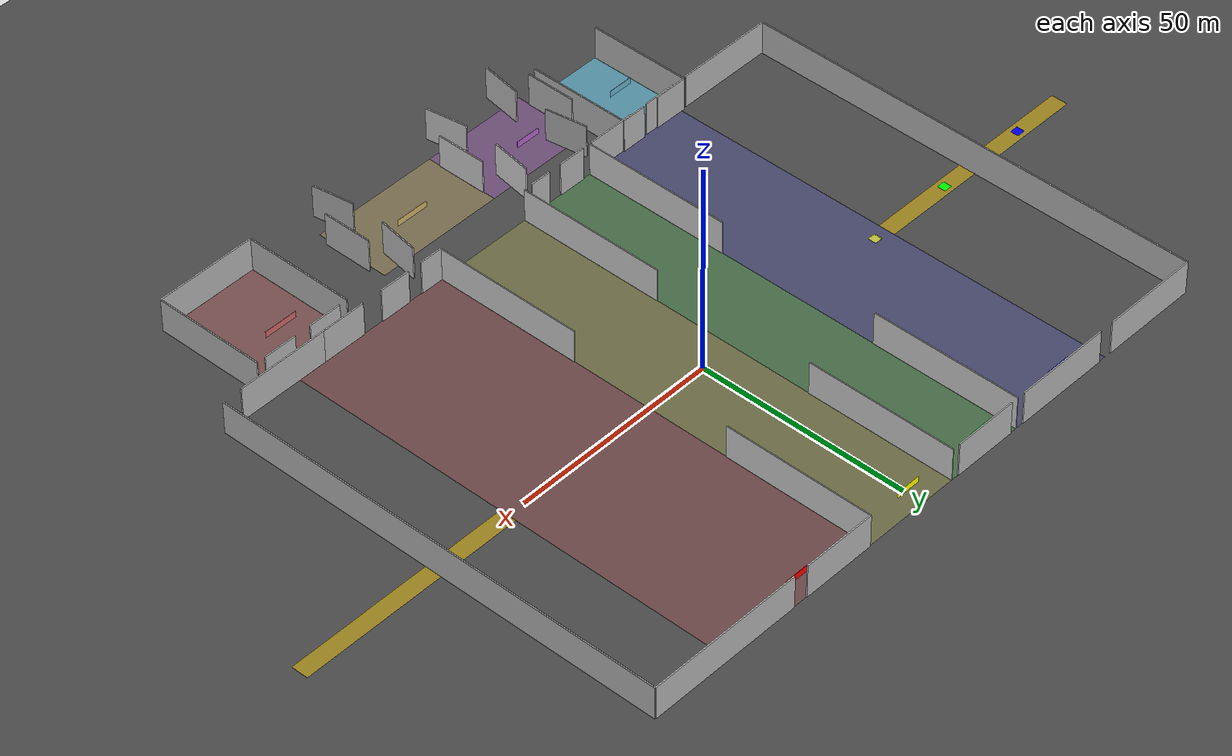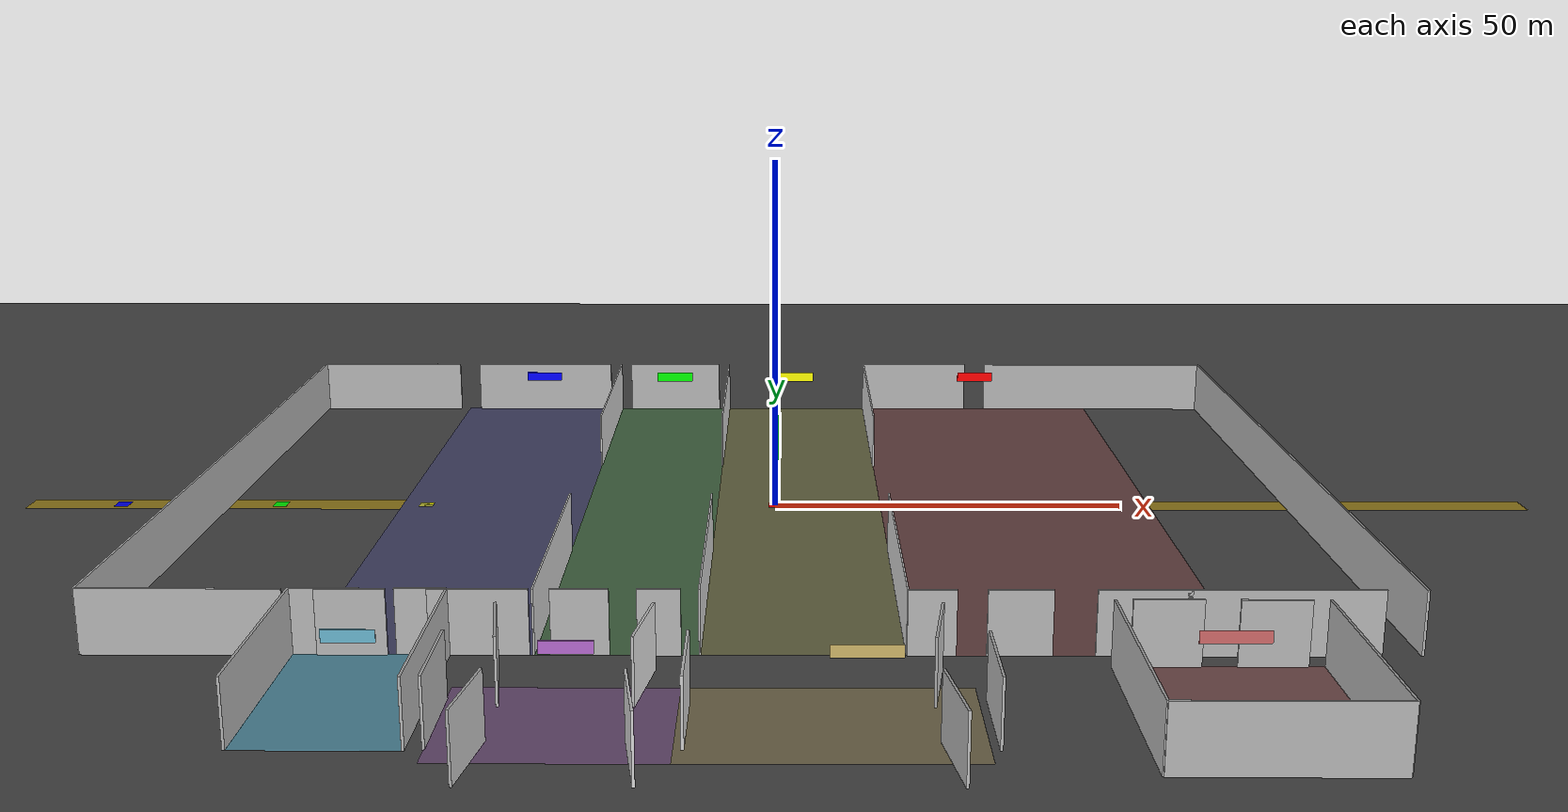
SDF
<?xml version="1.0" ?>
<sdf version="1.7">
  <world name="blueprint_warehouse">

    <!-- Physics Settings -->
    <physics name="1ms" type="ode">
      <max_step_size>0.001</max_step_size>
      <real_time_factor>1.0</real_time_factor>
      <real_time_update_rate>1000</real_time_update_rate>
    </physics>

    <!-- Scene Settings -->
    <scene>
      <ambient>0.4 0.4 0.4 1</ambient>
      <background>0.7 0.7 0.7 1</background>
      <shadows>true</shadows>
    </scene>

    <!-- Lighting -->
    <light name="sun" type="directional">
      <cast_shadows>true</cast_shadows>
      <pose>0 0 30 0 0 0</pose>
      <diffuse>0.8 0.8 0.8 1</diffuse>
      <specular>0.2 0.2 0.2 1</specular>
      <attenuation>
        <range>1000</range>
        <constant>0.9</constant>
        <linear>0.01</linear>
        <quadratic>0.001</quadratic>
      </attenuation>
      <direction>-0.5 0.1 -0.9</direction>
    </light>

    <!-- Additional warehouse lighting -->
    <light name="warehouse_light_1" type="point">
      <pose>-40 -25 8 0 0 0</pose>
      <diffuse>1 1 0.9 1</diffuse>
      <specular>0.1 0.1 0.1 1</specular>
      <attenuation>
        <range>40</range>
        <constant>0.5</constant>
        <linear>0.01</linear>
        <quadratic>0.001</quadratic>
      </attenuation>
    </light>

    <light name="warehouse_light_2" type="point">
      <pose>40 -25 8 0 0 0</pose>
      <diffuse>1 1 0.9 1</diffuse>
      <specular>0.1 0.1 0.1 1</specular>
      <attenuation>
        <range>40</range>
        <constant>0.5</constant>
        <linear>0.01</linear>
        <quadratic>0.001</quadratic>
      </attenuation>
    </light>

    <light name="warehouse_light_3" type="point">
      <pose>-40 25 8 0 0 0</pose>
      <diffuse>1 1 0.9 1</diffuse>
      <specular>0.1 0.1 0.1 1</specular>
      <attenuation>
        <range>40</range>
        <constant>0.5</constant>
        <linear>0.01</linear>
        <quadratic>0.001</quadratic>
      </attenuation>
    </light>

    <light name="warehouse_light_4" type="point">
      <pose>40 25 8 0 0 0</pose>
      <diffuse>1 1 0.9 1</diffuse>
      <specular>0.1 0.1 0.1 1</specular>
      <attenuation>
        <range>40</range>
        <constant>0.5</constant>
        <linear>0.01</linear>
        <quadratic>0.001</quadratic>
      </attenuation>
    </light>

    <!-- Ground Plane -->
    <model name="ground_plane">
      <static>true</static>
      <link name="link">
        <collision name="collision">
          <geometry>
            <plane>
              <normal>0 0 1</normal>
              <size>250 250</size>
            </plane>
          </geometry>
          <surface>
            <friction>
              <ode>
                <mu>100</mu>
                <mu2>50</mu2>
              </ode>
            </friction>
          </surface>
        </collision>
        <visual name="visual">
          <cast_shadows>false</cast_shadows>
          <geometry>
            <plane>
              <normal>0 0 1</normal>
              <size>250 250</size>
            </plane>
          </geometry>
          <material>
            <ambient>0.3 0.3 0.3 1</ambient>
            <diffuse>0.3 0.3 0.3 1</diffuse>
            <specular>0.1 0.1 0.1 1</specular>
          </material>
        </visual>
      </link>
    </model>

    <!-- NAVIGATION-OPTIMIZED RACK LAYOUT                               -->
    <!-- Main aisles aligned with doors for forklift navigation         -->

    <!-- Room 101 racks -->

    -->
    -->
    -->

    -->
    -->

    -->

    -->
    -->

    -->

    -->

    -->
    -->

    -->

    -->
    -->

    -->
    -->

    -->
    -->
    -->

    -->
    -->

    -->

    -->
    -->

    -->

    -->

    -->
    -->

    -->

    -->
    -->

    -->
    -->

    -->
    -->
    -->

    -->
    -->

    -->

    -->
    -->

    -->

    -->

    -->
    -->

    -->

    -->
    -->

    -->
    -->

    -->
    -->
    -->

    -->
    -->

    -->

    -->
    -->

    -->

    -->

    -->
    -->

    -->

    -->
    -->

    -->
    -->

    -->
    -->
    -->

    -->
    -->

    -->

    -->
    -->

    -->

    -->

    -->
    -->

    -->

    -->
    -->

    -->
    -->

    -->
    -->
    -->

    -->
    -->

    -->

    -->
    -->

    -->

    -->

    -->
    -->

    -->

    -->
    -->

    -->
    -->

    -->
    -->
    -->

    -->
    -->

    -->

    -->
    -->

    -->

    -->

    -->
    -->

    -->

    -->
    -->

    -->
    -->

    -->
    -->
    -->

    -->
    -->

    -->

    -->
    -->

    -->

    -->

    -->
    -->

    -->

    -->
    -->

    -->
    -->

    <!-- Room 102 racks -->

    -->
    -->
    -->

    -->
    -->

    -->

    -->
    -->

    -->

    -->

    -->
    -->

    -->

    -->
    -->

    -->
    -->

    -->
    -->
    -->

    -->
    -->

    -->

    -->
    -->

    -->

    -->

    -->
    -->

    -->

    -->
    -->

    -->
    -->

    -->
    -->
    -->

    -->
    -->

    -->

    -->
    -->

    -->

    -->

    -->
    -->

    -->

    -->
    -->

    -->
    -->

    -->
    -->
    -->

    -->
    -->

    -->

    -->
    -->

    -->

    -->

    -->
    -->

    -->

    -->
    -->

    -->
    -->

    <!-- Room 104 racks -->

    -->
    -->
    -->

    -->
    -->

    -->

    -->
    -->

    -->

    -->

    -->
    -->

    -->

    -->
    -->

    -->
    -->

    -->
    -->
    -->

    -->
    -->

    -->

    -->
    -->

    -->

    -->

    -->
    -->

    -->

    -->
    -->

    -->
    -->

    -->
    -->
    -->

    -->
    -->

    -->

    -->
    -->

    -->

    -->

    -->
    -->

    -->

    -->
    -->

    -->
    -->

    -->
    -->
    -->

    -->
    -->

    -->

    -->
    -->

    -->

    -->

    -->
    -->

    -->

    -->
    -->

    -->
    -->

    -->
    -->
    -->

    -->
    -->

    -->

    -->
    -->

    -->

    -->

    -->
    -->

    -->

    -->
    -->

    -->
    -->

    -->
    -->
    -->

    -->
    -->

    -->

    -->
    -->

    -->

    -->

    -->
    -->

    -->

    -->
    -->

    -->
    -->

    -->
    -->
    -->

    -->
    -->

    -->

    -->
    -->

    -->

    -->

    -->
    -->

    -->

    -->
    -->

    -->
    -->

    -->
    -->
    -->

    -->
    -->

    -->

    -->
    -->

    -->

    -->

    -->
    -->

    -->

    -->
    -->

    -->
    -->

    <!-- Room 105 racks -->

    -->
    -->
    -->

    -->
    -->

    -->

    -->
    -->

    -->

    -->

    -->
    -->

    -->

    -->
    -->

    -->
    -->

    -->
    -->
    -->

    -->
    -->

    -->

    -->
    -->

    -->

    -->

    -->
    -->

    -->

    -->
    -->

    -->
    -->

    -->
    -->
    -->

    -->
    -->

    -->

    -->
    -->

    -->

    -->

    -->
    -->

    -->

    -->
    -->

    -->
    -->

    -->
    -->
    -->

    -->
    -->

    -->

    -->
    -->

    -->

    -->

    -->
    -->

    -->

    -->
    -->

    -->
    -->

    -->
    -->
    -->

    -->
    -->

    -->

    -->
    -->

    -->

    -->

    -->
    -->

    -->

    -->
    -->

    -->
    -->

    -->
    -->
    -->

    -->
    -->

    -->

    -->
    -->

    -->

    -->

    -->
    -->

    -->

    -->
    -->

    -->
    -->

    -->
    -->
    -->

    -->
    -->

    -->

    -->
    -->

    -->

    -->

    -->
    -->

    -->

    -->
    -->

    -->
    -->

    -->
    -->
    -->

    -->
    -->

    -->

    -->
    -->

    -->

    -->

    -->
    -->

    -->

    -->
    -->

    -->
    -->

    -->
    -->
    -->

    -->
    -->

    -->

    -->
    -->

    -->

    -->

    -->
    -->

    -->

    -->
    -->

    -->
    -->

    -->
    -->
    -->

    -->
    -->

    -->

    -->
    -->

    -->

    -->

    -->
    -->

    -->

    -->
    -->

    -->
    -->

    -->
    -->
    -->

    -->
    -->

    -->

    -->
    -->

    -->

    -->

    -->
    -->

    -->

    -->
    -->

    -->
    -->

    -->
    -->
    -->

    -->
    -->

    -->

    -->
    -->

    -->

    -->

    -->
    -->

    -->

    -->
    -->

    -->
    -->

    <!-- WAREHOUSE STRUCTURE - EXACT BLUEPRINT MATCH                        -->
    <!-- Total warehouse: ~217m x 55m = 11,935 m²                          -->
    <!-- Room 101-FRYS: 2956 m² (54m x 55m)                               -->
    <!-- Room 102-KJØL: 2084 m² (38m x 55m)                               -->
    <!-- Room 104-TØRRVARE: 2600 m² (47m x 55m)                           -->
    <!-- Room 105-TØRRVARE: 4288 m² (78m x 55m)                           -->

    <!-- EXTERIOR WALLS -->
    <!-- North Wall (segmented with door openings) -->
    <!-- North Wall Segment 1: West wall to Room 101 door -->
    <model name="north_wall_1">
      <static>true</static>
      <pose>-67.45 55 4 0 0 0</pose>
      <link name="link">
        <collision name="collision">
          <geometry>
            <box>
              <size>23.5 0.3 8</size>
            </box>
          </geometry>
        </collision>
        <visual name="visual">
          <geometry>
            <box>
              <size>23.5 0.3 8</size>
            </box>
          </geometry>
          <material>
            <ambient>0.5 0.5 0.5 1</ambient>
            <diffuse>0.7 0.7 0.7 1</diffuse>
          </material>
        </visual>
      </link>
    </model>

    <!-- North Wall Segment 2: Room 101 door to Room 102 door -->
    <model name="north_wall_2">
      <static>true</static>
      <pose>-40.75 55 4 0 0 0</pose>
      <link name="link">
        <collision name="collision">
          <geometry>
            <box>
              <size>23.1 0.3 8</size>
            </box>
          </geometry>
        </collision>
        <visual name="visual">
          <geometry>
            <box>
              <size>23.1 0.3 8</size>
            </box>
          </geometry>
          <material>
            <ambient>0.5 0.5 0.5 1</ambient>
            <diffuse>0.7 0.7 0.7 1</diffuse>
          </material>
        </visual>
      </link>
    </model>

    <!-- North Wall Segment 3: Room 102 door to Room 104 door -->
    <model name="north_wall_3">
      <static>true</static>
      <pose>-17.85 55 4 0 0 0</pose>
      <link name="link">
        <collision name="collision">
          <geometry>
            <box>
              <size>15.4 0.3 8</size>
            </box>
          </geometry>
        </collision>
        <visual name="visual">
          <geometry>
            <box>
              <size>15.4 0.3 8</size>
            </box>
          </geometry>
          <material>
            <ambient>0.5 0.5 0.5 1</ambient>
            <diffuse>0.7 0.7 0.7 1</diffuse>
          </material>
        </visual>
      </link>
    </model>

    <!-- North Wall Segment 4: Room 104-105 divider to Room 105 door start -->
    <model name="north_wall_4">
      <static>true</static>
      <pose>24.075 55 4 0 0 0</pose>
      <link name="link">
        <collision name="collision">
          <geometry>
            <box>
              <size>17.75 0.3 8</size>
            </box>
          </geometry>
        </collision>
        <visual name="visual">
          <geometry>
            <box>
              <size>17.75 0.3 8</size>
            </box>
          </geometry>
          <material>
            <ambient>0.5 0.5 0.5 1</ambient>
            <diffuse>0.7 0.7 0.7 1</diffuse>
          </material>
        </visual>
      </link>
    </model>

    <!-- North Wall Segment 5: Room 105 door end to east wall -->
    <model name="north_wall_5">
      <static>true</static>
      <pose>55.175 55 4 0 0 0</pose>
      <link name="link">
        <collision name="collision">
          <geometry>
            <box>
              <size>37.45 0.3 8</size>
            </box>
          </geometry>
        </collision>
        <visual name="visual">
          <geometry>
            <box>
              <size>37.45 0.3 8</size>
            </box>
          </geometry>
          <material>
            <ambient>0.5 0.5 0.5 1</ambient>
            <diffuse>0.7 0.7 0.7 1</diffuse>
          </material>
        </visual>
      </link>
    </model>

    <!-- West Wall -->
    <model name="west_wall">
      <static>true</static>
      <pose>-79.2 0 4 0 0 0</pose>
      <link name="link">
        <collision name="collision">
          <geometry>
            <box>
              <size>0.3 110 8</size>
            </box>
          </geometry>
        </collision>
        <visual name="visual">
          <geometry>
            <box>
              <size>0.3 110 8</size>
            </box>
          </geometry>
          <material>
            <ambient>0.5 0.5 0.5 1</ambient>
            <diffuse>0.7 0.7 0.7 1</diffuse>
          </material>
        </visual>
      </link>
    </model>

    <!-- East Wall -->
    <model name="east_wall">
      <static>true</static>
      <pose>73.9 0 4 0 0 0</pose>
      <link name="link">
        <collision name="collision">
          <geometry>
            <box>
              <size>0.3 110 8</size>
            </box>
          </geometry>
        </collision>
        <visual name="visual">
          <geometry>
            <box>
              <size>0.3 110 8</size>
            </box>
          </geometry>
          <material>
            <ambient>0.5 0.5 0.5 1</ambient>
            <diffuse>0.7 0.7 0.7 1</diffuse>
          </material>
        </visual>
      </link>
    </model>

    <!-- South Wall (segmented with door openings) -->
    <!-- South Wall Segment 1: West wall to Room 101 door -->
    <model name="south_wall_1">
      <static>true</static>
      <pose>-67.45 -55 4 0 0 0</pose>
      <link name="link">
        <collision name="collision">
          <geometry>
            <box>
              <size>23.5 0.3 8</size>
            </box>
          </geometry>
        </collision>
        <visual name="visual">
          <geometry>
            <box>
              <size>23.5 0.3 8</size>
            </box>
          </geometry>
          <material>
            <ambient>0.5 0.5 0.5 1</ambient>
            <diffuse>0.7 0.7 0.7 1</diffuse>
          </material>
        </visual>
      </link>
    </model>

    <!-- South Wall Segment 2: Room 101 door to Room 102 door (with opening for Room 106) -->
    <model name="south_wall_2a">
      <static>true</static>
      <pose>-48 -55 4 0 0 0</pose>
      <link name="link">
        <collision name="collision">
          <geometry>
            <box>
              <size>8.1 0.3 8</size>
            </box>
          </geometry>
        </collision>
        <visual name="visual">
          <geometry>
            <box>
              <size>8.1 0.3 8</size>
            </box>
          </geometry>
          <material>
            <ambient>0.5 0.5 0.5 1</ambient>
            <diffuse>0.7 0.7 0.7 1</diffuse>
          </material>
        </visual>
      </link>
    </model>

    <!-- Door opening for Room 106 at x=-42 -->

    <model name="south_wall_2b">
      <static>true</static>
      <pose>-33.5 -55 4 0 0 0</pose>
      <link name="link">
        <collision name="collision">
          <geometry>
            <box>
              <size>11.5 0.3 8</size>
            </box>
          </geometry>
        </collision>
        <visual name="visual">
          <geometry>
            <box>
              <size>11.5 0.3 8</size>
            </box>
          </geometry>
          <material>
            <ambient>0.5 0.5 0.5 1</ambient>
            <diffuse>0.7 0.7 0.7 1</diffuse>
          </material>
        </visual>
      </link>
    </model>

    <!-- South Wall Segment 3: Room 102 door to Room 104 door (with opening for Room 107) -->
    <model name="south_wall_3a">
      <static>true</static>
      <pose>-22 -55 4 0 0 0</pose>
      <link name="link">
        <collision name="collision">
          <geometry>
            <box>
              <size>6.7 0.3 8</size>
            </box>
          </geometry>
        </collision>
        <visual name="visual">
          <geometry>
            <box>
              <size>6.7 0.3 8</size>
            </box>
          </geometry>
          <material>
            <ambient>0.5 0.5 0.5 1</ambient>
            <diffuse>0.7 0.7 0.7 1</diffuse>
          </material>
        </visual>
      </link>
    </model>

    <!-- Door opening for Room 107 at x=-17 -->

    <model name="south_wall_3b">
      <static>true</static>
      <pose>-13 -55 4 0 0 0</pose>
      <link name="link">
        <collision name="collision">
          <geometry>
            <box>
              <size>5 0.3 8</size>
            </box>
          </geometry>
        </collision>
        <visual name="visual">
          <geometry>
            <box>
              <size>5 0.3 8</size>
            </box>
          </geometry>
          <material>
            <ambient>0.5 0.5 0.5 1</ambient>
            <diffuse>0.7 0.7 0.7 1</diffuse>
          </material>
        </visual>
      </link>
    </model>

    <!-- South Wall Segment 4: Room 104-105 divider to Room 105 door start (with opening for Room 108) -->
    <model name="south_wall_4a">
      <static>true</static>
      <pose>18 -55 4 0 0 0</pose>
      <link name="link">
        <collision name="collision">
          <geometry>
            <box>
              <size>5.6 0.3 8</size>
            </box>
          </geometry>
        </collision>
        <visual name="visual">
          <geometry>
            <box>
              <size>5.6 0.3 8</size>
            </box>
          </geometry>
          <material>
            <ambient>0.5 0.5 0.5 1</ambient>
            <diffuse>0.7 0.7 0.7 1</diffuse>
          </material>
        </visual>
      </link>
    </model>

    <!-- Door opening for Room 108 at x=23 -->

    <model name="south_wall_4b">
      <static>true</static>
      <pose>28 -55 4 0 0 0</pose>
      <link name="link">
        <collision name="collision">
          <geometry>
            <box>
              <size>7.5 0.3 8</size>
            </box>
          </geometry>
        </collision>
        <visual name="visual">
          <geometry>
            <box>
              <size>7.5 0.3 8</size>
            </box>
          </geometry>
          <material>
            <ambient>0.5 0.5 0.5 1</ambient>
            <diffuse>0.7 0.7 0.7 1</diffuse>
          </material>
        </visual>
      </link>
    </model>

    <!-- South Wall Segment 5: Room 105 door end to east wall (with opening for Room 109) -->
    <model name="south_wall_5a">
      <static>true</static>
      <pose>42 -55 4 0 0 0</pose>
      <link name="link">
        <collision name="collision">
          <geometry>
            <box>
              <size>10.7 0.3 8</size>
            </box>
          </geometry>
        </collision>
        <visual name="visual">
          <geometry>
            <box>
              <size>10.7 0.3 8</size>
            </box>
          </geometry>
          <material>
            <ambient>0.5 0.5 0.5 1</ambient>
            <diffuse>0.7 0.7 0.7 1</diffuse>
          </material>
        </visual>
      </link>
    </model>

    <!-- Door opening for Room 109 at x=48 -->

    <model name="south_wall_5b">
      <static>true</static>
      <pose>58 -55 4 0 0 0</pose>
      <link name="link">
        <collision name="collision">
          <geometry>
            <box>
              <size>22.45 0.3 8</size>
            </box>
          </geometry>
        </collision>
        <visual name="visual">
          <geometry>
            <box>
              <size>22.45 0.3 8</size>
            </box>
          </geometry>
          <material>
            <ambient>0.5 0.5 0.5 1</ambient>
            <diffuse>0.7 0.7 0.7 1</diffuse>
          </material>
        </visual>
      </link>
    </model>

    <!-- SOUTH EXTENSION ROOMS (106, 107, 108, 109)                        -->

    <!-- Room 106-TORG INN (Rectangular, 440.7 m²) -->
    <!-- Position: Sharing south wall with main warehouse at y=-55 -->
    <model name="room_106_floor">
      <static>true</static>
      <pose>-46 -67 0.01 0 0 0</pose>
      <link name="link">
        <visual name="visual">
          <geometry>
            <box>
              <size>18 24.5 0.02</size>
            </box>
          </geometry>
          <material>
            <ambient>0.4 0.7 0.8 0.8</ambient>
            <diffuse>0.4 0.7 0.8 0.8</diffuse>
          </material>
        </visual>
      </link>
    </model>

    <!-- Room 106 Walls -->
    <!-- South wall shared with main warehouse at y=-55 -->

    <!-- West Wall -->
    <model name="room_106_west_wall">
      <static>true</static>
      <pose>-55 -67 4 0 0 0</pose>
      <link name="link">
        <collision name="collision">
          <geometry>
            <box>
              <size>0.3 24.5 8</size>
            </box>
          </geometry>
        </collision>
        <visual name="visual">
          <geometry>
            <box>
              <size>0.3 24.5 8</size>
            </box>
          </geometry>
          <material>
            <ambient>0.5 0.5 0.5 1</ambient>
            <diffuse>0.7 0.7 0.7 1</diffuse>
          </material>
        </visual>
      </link>
    </model>

    <!-- East Wall -->
    <model name="room_106_east_wall">
      <static>true</static>
      <pose>-37 -67 4 0 0 0</pose>
      <link name="link">
        <collision name="collision">
          <geometry>
            <box>
              <size>0.3 24.5 8</size>
            </box>
          </geometry>
        </collision>
        <visual name="visual">
          <geometry>
            <box>
              <size>0.3 24.5 8</size>
            </box>
          </geometry>
          <material>
            <ambient>0.5 0.5 0.5 1</ambient>
            <diffuse>0.7 0.7 0.7 1</diffuse>
          </material>
        </visual>
      </link>
    </model>

    <!-- Room 106 North Wall with Door Opening -->
    <model name="room_106_north_wall_west">
      <static>true</static>
      <pose>-51 -54.75 4 0 0 0</pose>
      <link name="link">
        <collision name="collision">
          <geometry>
            <box>
              <size>8 0.3 8</size>
            </box>
          </geometry>
        </collision>
        <visual name="visual">
          <geometry>
            <box>
              <size>8 0.3 8</size>
            </box>
          </geometry>
          <material>
            <ambient>0.5 0.5 0.5 1</ambient>
            <diffuse>0.7 0.7 0.7 1</diffuse>
          </material>
        </visual>
      </link>
    </model>

    <model name="room_106_north_wall_east">
      <static>true</static>
      <pose>-40 -54.75 4 0 0 0</pose>
      <link name="link">
        <collision name="collision">
          <geometry>
            <box>
              <size>6 0.3 8</size>
            </box>
          </geometry>
        </collision>
        <visual name="visual">
          <geometry>
            <box>
              <size>6 0.3 8</size>
            </box>
          </geometry>
          <material>
            <ambient>0.5 0.5 0.5 1</ambient>
            <diffuse>0.7 0.7 0.7 1</diffuse>
          </material>
        </visual>
      </link>
    </model>

    <!-- Room 107-TORG INN (Left Hexagon, 469.7 m²) -->
    <!-- Position: Left side of connected hexagonal structure -->
    <model name="room_107_floor">
      <static>true</static>
      <pose>-22 -73 0.01 0 0 0</pose>
      <link name="link">
        <visual name="visual">
          <geometry>
            <box>
              <size>26 18 0.02</size>
            </box>
          </geometry>
          <material>
            <ambient>0.7 0.4 0.8 0.4</ambient>
            <diffuse>0.7 0.4 0.8 0.4</diffuse>
          </material>
        </visual>
      </link>
    </model>

    <!-- Room 107 Hexagonal Walls - Left Hexagon (Shares 3 sides with Room 108) -->
    <!-- North side connects to main warehouse south wall at y=-55 -->

    <!-- Room 107 Outer Walls (3 sides) -->

    <!-- North-West Angled Wall (Outer) -->
    <model name="room_107_wall_nw_outer">
      <static>true</static>
      <pose>-30 -64 4 0 0 30</pose>
      <link name="link">
        <collision name="collision">
          <geometry>
            <box>
              <size>10 0.3 8</size>
            </box>
          </geometry>
        </collision>
        <visual name="visual">
          <geometry>
            <box>
              <size>10 0.3 8</size>
            </box>
          </geometry>
          <material>
            <ambient>0.5 0.5 0.5 1</ambient>
            <diffuse>0.7 0.7 0.7 1</diffuse>
          </material>
        </visual>
      </link>
    </model>

    <!-- West Vertical Wall (Outer) -->
    <model name="room_107_wall_w_outer">
      <static>true</static>
      <pose>-35 -73 4 0 0 0</pose>
      <link name="link">
        <collision name="collision">
          <geometry>
            <box>
              <size>0.3 12 8</size>
            </box>
          </geometry>
        </collision>
        <visual name="visual">
          <geometry>
            <box>
              <size>0.3 12 8</size>
            </box>
          </geometry>
          <material>
            <ambient>0.5 0.5 0.5 1</ambient>
            <diffuse>0.7 0.7 0.7 1</diffuse>
          </material>
        </visual>
      </link>
    </model>

    <!-- South-West Angled Wall (Outer) -->
    <model name="room_107_wall_sw_outer">
      <static>true</static>
      <pose>-30 -82 4 0 0 -30</pose>
      <link name="link">
        <collision name="collision">
          <geometry>
            <box>
              <size>10 0.3 8</size>
            </box>
          </geometry>
        </collision>
        <visual name="visual">
          <geometry>
            <box>
              <size>10 0.3 8</size>
            </box>
          </geometry>
          <material>
            <ambient>0.5 0.5 0.5 1</ambient>
            <diffuse>0.7 0.7 0.7 1</diffuse>
          </material>
        </visual>
      </link>
    </model>

    <!-- Room 108-MILJØSTASJON (Right Hexagon, 699.4 m²) -->
    <!-- Position: Right side of connected hexagonal structure -->
    <model name="room_108_floor">
      <static>true</static>
      <pose>6 -73 0.01 0 0 0</pose>
      <link name="link">
        <visual name="visual">
          <geometry>
            <box>
              <size>32 18 0.02</size>
            </box>
          </geometry>
          <material>
            <ambient>0.8 0.7 0.4 0.4</ambient>
            <diffuse>0.8 0.7 0.4 0.4</diffuse>
          </material>
        </visual>
      </link>
    </model>

    <!-- Shared Walls Between Room 107 and 108 (3 sides) -->

    <!-- Shared North-East/North-West Angled Wall -->
    <model name="rooms_107_108_shared_wall_n">
      <static>true</static>
      <pose>-14 -64 4 0 0 -30</pose>
      <link name="link">
        <collision name="collision">
          <geometry>
            <box>
              <size>10 0.3 8</size>
            </box>
          </geometry>
        </collision>
        <visual name="visual">
          <geometry>
            <box>
              <size>10 0.3 8</size>
            </box>
          </geometry>
          <material>
            <ambient>0.6 0.6 0.6 1</ambient>
            <diffuse>0.8 0.8 0.8 1</diffuse>
          </material>
        </visual>
      </link>
    </model>

    <!-- Shared East/West Vertical Wall -->
    <model name="rooms_107_108_shared_wall_center">
      <static>true</static>
      <pose>-9 -73 4 0 0 0</pose>
      <link name="link">
        <collision name="collision">
          <geometry>
            <box>
              <size>0.3 12 8</size>
            </box>
          </geometry>
        </collision>
        <visual name="visual">
          <geometry>
            <box>
              <size>0.3 12 8</size>
            </box>
          </geometry>
          <material>
            <ambient>0.6 0.6 0.6 1</ambient>
            <diffuse>0.8 0.8 0.8 1</diffuse>
          </material>
        </visual>
      </link>
    </model>

    <!-- Shared South-East/South-West Angled Wall -->
    <model name="rooms_107_108_shared_wall_s">
      <static>true</static>
      <pose>-14 -82 4 0 0 30</pose>
      <link name="link">
        <collision name="collision">
          <geometry>
            <box>
              <size>10 0.3 8</size>
            </box>
          </geometry>
        </collision>
        <visual name="visual">
          <geometry>
            <box>
              <size>10 0.3 8</size>
            </box>
          </geometry>
          <material>
            <ambient>0.6 0.6 0.6 1</ambient>
            <diffuse>0.8 0.8 0.8 1</diffuse>
          </material>
        </visual>
      </link>
    </model>

    <!-- Room 108 Hexagonal Walls - Right Hexagon (Shares 3 sides with Room 107) -->
    <!-- North side connects to main warehouse south wall at y=-55 -->

    <!-- Room 108 Outer Walls (3 sides) -->

    <!-- North-East Angled Wall (Outer) -->
    <model name="room_108_wall_ne_outer">
      <static>true</static>
      <pose>18 -64 4 0 0 -30</pose>
      <link name="link">
        <collision name="collision">
          <geometry>
            <box>
              <size>10 0.3 8</size>
            </box>
          </geometry>
        </collision>
        <visual name="visual">
          <geometry>
            <box>
              <size>10 0.3 8</size>
            </box>
          </geometry>
          <material>
            <ambient>0.5 0.5 0.5 1</ambient>
            <diffuse>0.7 0.7 0.7 1</diffuse>
          </material>
        </visual>
      </link>
    </model>

    <!-- East Vertical Wall (Outer) -->
    <model name="room_108_wall_e_outer">
      <static>true</static>
      <pose>23 -73 4 0 0 0</pose>
      <link name="link">
        <collision name="collision">
          <geometry>
            <box>
              <size>0.3 12 8</size>
            </box>
          </geometry>
        </collision>
        <visual name="visual">
          <geometry>
            <box>
              <size>0.3 12 8</size>
            </box>
          </geometry>
          <material>
            <ambient>0.5 0.5 0.5 1</ambient>
            <diffuse>0.7 0.7 0.7 1</diffuse>
          </material>
        </visual>
      </link>
    </model>

    <!-- South-East Angled Wall (Outer) -->
    <model name="room_108_wall_se_outer">
      <static>true</static>
      <pose>18 -82 4 0 0 30</pose>
      <link name="link">
        <collision name="collision">
          <geometry>
            <box>
              <size>10 0.3 8</size>
            </box>
          </geometry>
        </collision>
        <visual name="visual">
          <geometry>
            <box>
              <size>10 0.3 8</size>
            </box>
          </geometry>
          <material>
            <ambient>0.5 0.5 0.5 1</ambient>
            <diffuse>0.7 0.7 0.7 1</diffuse>
          </material>
        </visual>
      </link>
    </model>

    <!-- Room 109-MILJØSTASJON UTE (Rectangular, 634.7 m²) -->
    <!-- Position: Below Room 105 -->
    <model name="room_109_floor">
      <static>true</static>
      <pose>50 -71.25 0.01 0 0 0</pose>
      <link name="link">
        <visual name="visual">
          <geometry>
            <box>
              <size>24 26.5 0.02</size>
            </box>
          </geometry>
          <material>
            <ambient>0.8 0.4 0.4 0.4</ambient>
            <diffuse>0.8 0.4 0.4 0.4</diffuse>
          </material>
        </visual>
      </link>
    </model>

    <!-- Room 109 Walls -->
    <!-- South Wall -->
    <model name="room_109_south_wall">
      <static>true</static>
      <pose>50 -84.5 4 0 0 0</pose>
      <link name="link">
        <collision name="collision">
          <geometry>
            <box>
              <size>24 0.3 8</size>
            </box>
          </geometry>
        </collision>
        <visual name="visual">
          <geometry>
            <box>
              <size>24 0.3 8</size>
            </box>
          </geometry>
          <material>
            <ambient>0.5 0.5 0.5 1</ambient>
            <diffuse>0.7 0.7 0.7 1</diffuse>
          </material>
        </visual>
      </link>
    </model>

    <!-- West Wall -->
    <model name="room_109_west_wall">
      <static>true</static>
      <pose>38 -71.25 4 0 0 0</pose>
      <link name="link">
        <collision name="collision">
          <geometry>
            <box>
              <size>0.3 26.5 8</size>
            </box>
          </geometry>
        </collision>
        <visual name="visual">
          <geometry>
            <box>
              <size>0.3 26.5 8</size>
            </box>
          </geometry>
          <material>
            <ambient>0.5 0.5 0.5 1</ambient>
            <diffuse>0.7 0.7 0.7 1</diffuse>
          </material>
        </visual>
      </link>
    </model>

    <!-- East Wall -->
    <model name="room_109_east_wall">
      <static>true</static>
      <pose>62 -71.25 4 0 0 0</pose>
      <link name="link">
        <collision name="collision">
          <geometry>
            <box>
              <size>0.3 26.5 8</size>
            </box>
          </geometry>
        </collision>
        <visual name="visual">
          <geometry>
            <box>
              <size>0.3 26.5 8</size>
            </box>
          </geometry>
          <material>
            <ambient>0.5 0.5 0.5 1</ambient>
            <diffuse>0.7 0.7 0.7 1</diffuse>
          </material>
        </visual>
      </link>
    </model>

    <!-- Room 109 North Wall with Door Opening -->
    <model name="room_109_north_wall_west">
      <static>true</static>
      <pose>44 -58 4 0 0 0</pose>
      <link name="link">
        <collision name="collision">
          <geometry>
            <box>
              <size>8 0.3 8</size>
            </box>
          </geometry>
        </collision>
        <visual name="visual">
          <geometry>
            <box>
              <size>8 0.3 8</size>
            </box>
          </geometry>
          <material>
            <ambient>0.5 0.5 0.5 1</ambient>
            <diffuse>0.7 0.7 0.7 1</diffuse>
          </material>
        </visual>
      </link>
    </model>

    <model name="room_109_north_wall_east">
      <static>true</static>
      <pose>56 -58 4 0 0 0</pose>
      <link name="link">
        <collision name="collision">
          <geometry>
            <box>
              <size>8 0.3 8</size>
            </box>
          </geometry>
        </collision>
        <visual name="visual">
          <geometry>
            <box>
              <size>8 0.3 8</size>
            </box>
          </geometry>
          <material>
            <ambient>0.5 0.5 0.5 1</ambient>
            <diffuse>0.7 0.7 0.7 1</diffuse>
          </material>
        </visual>
      </link>
    </model>

    <!-- ROOM DIVIDERS                                                       -->

    <!-- Divider between 101-FRYS and 102-KJØL (vertical, with door opening) -->
    <!-- Divider 101-102 Segment 1: North part -->
    <model name="divider_101_102_north">
      <static>true</static>
      <pose>-27.3 37.25 4 0 0 0</pose>
      <link name="link">
        <collision name="collision">
          <geometry>
            <box>
              <size>0.2 35.5 8</size>
            </box>
          </geometry>
        </collision>
        <visual name="visual">
          <geometry>
            <box>
              <size>0.2 35.5 8</size>
            </box>
          </geometry>
          <material>
            <ambient>0.6 0.6 0.6 1</ambient>
            <diffuse>0.8 0.8 0.8 1</diffuse>
          </material>
        </visual>
      </link>
    </model>

    <!-- Divider 101-102 Segment 2: South part -->
    <model name="divider_101_102_south">
      <static>true</static>
      <pose>-27.3 -37.25 4 0 0 0</pose>
      <link name="link">
        <collision name="collision">
          <geometry>
            <box>
              <size>0.2 35.5 8</size>
            </box>
          </geometry>
        </collision>
        <visual name="visual">
          <geometry>
            <box>
              <size>0.2 35.5 8</size>
            </box>
          </geometry>
          <material>
            <ambient>0.6 0.6 0.6 1</ambient>
            <diffuse>0.8 0.8 0.8 1</diffuse>
          </material>
        </visual>
      </link>
    </model>

    <!-- Divider between 102-KJØL and 104-TØRRVARE (vertical, with door opening) -->
    <!-- Divider 102-104 Segment 1: North part -->
    <model name="divider_102_104_north">
      <static>true</static>
      <pose>-8.4 37.25 4 0 0 0</pose>
      <link name="link">
        <collision name="collision">
          <geometry>
            <box>
              <size>0.2 35.5 8</size>
            </box>
          </geometry>
        </collision>
        <visual name="visual">
          <geometry>
            <box>
              <size>0.2 35.5 8</size>
            </box>
          </geometry>
          <material>
            <ambient>0.6 0.6 0.6 1</ambient>
            <diffuse>0.8 0.8 0.8 1</diffuse>
          </material>
        </visual>
      </link>
    </model>

    <!-- Divider 102-104 Segment 2: South part -->
    <model name="divider_102_104_south">
      <static>true</static>
      <pose>-8.4 -37.25 4 0 0 0</pose>
      <link name="link">
        <collision name="collision">
          <geometry>
            <box>
              <size>0.2 35.5 8</size>
            </box>
          </geometry>
        </collision>
        <visual name="visual">
          <geometry>
            <box>
              <size>0.2 35.5 8</size>
            </box>
          </geometry>
          <material>
            <ambient>0.6 0.6 0.6 1</ambient>
            <diffuse>0.8 0.8 0.8 1</diffuse>
          </material>
        </visual>
      </link>
    </model>

    <!-- Divider between 104-TØRRVARE and 105-TØRRVARE (vertical, with door opening) -->
    <!-- Divider 104-105 Segment 1: North part -->
    <model name="divider_104_105_north">
      <static>true</static>
      <pose>15.2 37.25 4 0 0 0</pose>
      <link name="link">
        <collision name="collision">
          <geometry>
            <box>
              <size>0.2 35.5 8</size>
            </box>
          </geometry>
        </collision>
        <visual name="visual">
          <geometry>
            <box>
              <size>0.2 35.5 8</size>
            </box>
          </geometry>
          <material>
            <ambient>0.6 0.6 0.6 1</ambient>
            <diffuse>0.8 0.8 0.8 1</diffuse>
          </material>
        </visual>
      </link>
    </model>

    <!-- Divider 104-105 Segment 2: South part -->
    <model name="divider_104_105_south">
      <static>true</static>
      <pose>15.2 -37.25 4 0 0 0</pose>
      <link name="link">
        <collision name="collision">
          <geometry>
            <box>
              <size>0.2 35.5 8</size>
            </box>
          </geometry>
        </collision>
        <visual name="visual">
          <geometry>
            <box>
              <size>0.2 35.5 8</size>
            </box>
          </geometry>
          <material>
            <ambient>0.6 0.6 0.6 1</ambient>
            <diffuse>0.8 0.8 0.8 1</diffuse>
          </material>
        </visual>
      </link>
    </model>

    <!-- ROOM FLOOR MARKINGS FOR IDENTIFICATION                             -->

    <!-- Room 101-FRYS Floor Marking (2956 m²) -->
    <model name="room_101_floor">
      <static>true</static>
      <pose>-40.75 0 0.01 0 0 0</pose>
      <link name="link">
        <visual name="visual">
          <geometry>
            <box>
              <size>26.9 110 0.02</size>
            </box>
          </geometry>
          <material>
            <ambient>0.3 0.3 0.8 0.3</ambient>
            <diffuse>0.3 0.3 0.8 0.3</diffuse>
          </material>
        </visual>
      </link>
    </model>

    <!-- Room 102-KJØL Floor Marking (2084 m²) -->
    <model name="room_102_floor">
      <static>true</static>
      <pose>-17.85 0 0.01 0 0 0</pose>
      <link name="link">
        <visual name="visual">
          <geometry>
            <box>
              <size>18.9 110 0.02</size>
            </box>
          </geometry>
          <material>
            <ambient>0.3 0.8 0.3 0.3</ambient>
            <diffuse>0.3 0.8 0.3 0.3</diffuse>
          </material>
        </visual>
      </link>
    </model>

    <!-- Room 104-TØRRVARE Floor Marking (2600 m²) -->
    <model name="room_104_floor">
      <static>true</static>
      <pose>3.4 0 0.01 0 0 0</pose>
      <link name="link">
        <visual name="visual">
          <geometry>
            <box>
              <size>23.6 110 0.02</size>
            </box>
          </geometry>
          <material>
            <ambient>0.8 0.8 0.3 0.3</ambient>
            <diffuse>0.8 0.8 0.3 0.3</diffuse>
          </material>
        </visual>
      </link>
    </model>

    <!-- Room 105-TØRRVARE Floor Marking (4288 m²) -->
    <model name="room_105_floor">
      <static>true</static>
      <pose>34.7 0 0.01 0 0 0</pose>
      <link name="link">
        <visual name="visual">
          <geometry>
            <box>
              <size>39.0 110 0.02</size>
            </box>
          </geometry>
          <material>
            <ambient>0.8 0.3 0.3 0.3</ambient>
            <diffuse>0.8 0.3 0.3 0.3</diffuse>
          </material>
        </visual>
      </link>
    </model>

    <!-- RIGHT NEXT TO MAIN WAREHOUSE - IMPOSSIBLE TO MISS -->

    <!-- MASSIVE VISIBLE TEST MARKER - RIGHT AT MAIN WAREHOUSE -->

    <!-- ROOM IDENTIFICATION SIGNS                                           -->

    <!-- Room 101-FRYS Sign -->
    <model name="sign_101_frys">
      <static>true</static>
      <pose>-40.75 54 6 0 0 0</pose>
      <link name="link">
        <visual name="visual">
          <geometry>
            <box>
              <size>6 0.1 1.5</size>
            </box>
          </geometry>
          <material>
            <ambient>0 0 0.8 1</ambient>
            <diffuse>0 0 1 1</diffuse>
          </material>
        </visual>
      </link>
    </model>

    <!-- Room 102-KJØL Sign -->
    <model name="sign_102_kjol">
      <static>true</static>
      <pose>-17.85 54 6 0 0 0</pose>
      <link name="link">
        <visual name="visual">
          <geometry>
            <box>
              <size>6 0.1 1.5</size>
            </box>
          </geometry>
          <material>
            <ambient>0 0.8 0 1</ambient>
            <diffuse>0 1 0 1</diffuse>
          </material>
        </visual>
      </link>
    </model>

    <!-- Room 104-TØRRVARE Sign -->
    <model name="sign_104_torrvare">
      <static>true</static>
      <pose>3.4 54 6 0 0 0</pose>
      <link name="link">
        <visual name="visual">
          <geometry>
            <box>
              <size>6 0.1 1.5</size>
            </box>
          </geometry>
          <material>
            <ambient>0.8 0.8 0 1</ambient>
            <diffuse>1 1 0 1</diffuse>
          </material>
        </visual>
      </link>
    </model>

    <!-- Room 105-TØRRVARE Sign -->
    <model name="sign_105_torrvare">
      <static>true</static>
      <pose>34.7 54 6 0 0 0</pose>
      <link name="link">
        <visual name="visual">
          <geometry>
            <box>
              <size>6 0.1 1.5</size>
            </box>
          </geometry>
          <material>
            <ambient>0.8 0 0 1</ambient>
            <diffuse>1 0 0 1</diffuse>
          </material>
        </visual>
      </link>
    </model>

    <!-- Room 106-TORG INN Sign -->
    <model name="sign_106_torg_inn">
      <static>true</static>
      <pose>-46 -64 6 0 0 0</pose>
      <link name="link">
        <visual name="visual">
          <geometry>
            <box>
              <size>6 0.1 1.5</size>
            </box>
          </geometry>
          <material>
            <ambient>0.4 0.7 0.8 1</ambient>
            <diffuse>0.4 0.7 0.8 1</diffuse>
          </material>
        </visual>
      </link>
    </model>

    <!-- Room 107-TORG INN Sign -->
    <model name="sign_107_torg_inn">
      <static>true</static>
      <pose>-22 -67 6 0 0 0</pose>
      <link name="link">
        <visual name="visual">
          <geometry>
            <box>
              <size>6 0.1 1.5</size>
            </box>
          </geometry>
          <material>
            <ambient>0.7 0.4 0.8 1</ambient>
            <diffuse>0.7 0.4 0.8 1</diffuse>
          </material>
        </visual>
      </link>
    </model>

    <!-- Room 108-MIL JOBB STASJON Sign -->
    <model name="sign_108_mil_jobb">
      <static>true</static>
      <pose>10 -68 6 0 0 0</pose>
      <link name="link">
        <visual name="visual">
          <geometry>
            <box>
              <size>8 0.1 1.5</size>
            </box>
          </geometry>
          <material>
            <ambient>0.8 0.7 0.4 1</ambient>
            <diffuse>0.8 0.7 0.4 1</diffuse>
          </material>
        </visual>
      </link>
    </model>

    <!-- Room 109-MIL JOBB STASJON LITE Sign -->
    <model name="sign_109_mil_jobb_lite">
      <static>true</static>
      <pose>50 -64 6 0 0 0</pose>
      <link name="link">
        <visual name="visual">
          <geometry>
            <box>
              <size>8 0.1 1.5</size>
            </box>
          </geometry>
          <material>
            <ambient>0.8 0.4 0.4 1</ambient>
            <diffuse>0.8 0.4 0.4 1</diffuse>
          </material>
        </visual>
      </link>
    </model>

    <!-- RACKING SYSTEMS (Based on Blueprint Parallel Lines)                -->

    <!-- Racks in Room 101-FRYS -->

    <!-- Additional racks for Room 101 to match blueprint density -->

    <!-- Racks in Room 102-KJØL -->

    <!-- Additional racks for Room 102 to match blueprint density -->

    <!-- Racks in Room 104-TØRRVARE -->

    <!-- Additional racks for Room 104 to match blueprint density -->

    <!-- Racks in Room 105-TØRRVARE (largest room) -->

    <!-- Additional racks for Room 105 to match blueprint density -->

    <!-- NAVIGATION CORRIDORS AND MARKINGS                                   -->

    <!-- Main navigation corridor (East-West) -->
    <model name="nav_corridor_ew">
      <static>true</static>
      <pose>0 0 0.005 0 0 0</pose>
      <link name="link">
        <visual name="visual">
          <geometry>
            <box>
              <size>217 4 0.01</size>
            </box>
          </geometry>
          <material>
            <ambient>1 0.8 0 0.5</ambient>
            <diffuse>1 0.8 0 0.5</diffuse>
          </material>
        </visual>
      </link>
    </model>

    <!-- Navigation markers at room centers -->
    <model name="nav_marker_101">
      <static>true</static>
      <pose>-95 0 0.01 0 0 0</pose>
      <link name="link">
        <visual name="visual">
          <geometry>
            <box>
              <size>2 2 0.02</size>
            </box>
          </geometry>
          <material>
            <ambient>0 0 1 1</ambient>
            <diffuse>0 0 1 1</diffuse>
          </material>
        </visual>
      </link>
    </model>

    <model name="nav_marker_102">
      <static>true</static>
      <pose>-72 0 0.01 0 0 0</pose>
      <link name="link">
        <visual name="visual">
          <geometry>
            <box>
              <size>2 2 0.02</size>
            </box>
          </geometry>
          <material>
            <ambient>0 1 0 1</ambient>
            <diffuse>0 1 0 1</diffuse>
          </material>
        </visual>
      </link>
    </model>

    <model name="nav_marker_104">
      <static>true</static>
      <pose>-50.75 0 0.01 0 0 0</pose>
      <link name="link">
        <visual name="visual">
          <geometry>
            <box>
              <size>2 2 0.02</size>
            </box>
          </geometry>
          <material>
            <ambient>1 1 0 1</ambient>
            <diffuse>1 1 0 1</diffuse>
          </material>
        </visual>
      </link>
    </model>

    <model name="nav_marker_105">
      <static>true</static>
      <pose>0 0 0.01 0 0 0</pose>
      <link name="link">
        <visual name="visual">
          <geometry>
            <box>
              <size>2 2 0.02</size>
            </box>
          </geometry>
          <material>
            <ambient>1 0 0 1</ambient>
            <diffuse>1 0 0 1</diffuse>
          </material>
        </visual>
      </link>
    </model>

    <!-- DOOR OPENINGS CREATED BY SEGMENTED WALLS                            -->
    <!-- Door openings are now created by gaps in the segmented walls        -->

    <!-- FORKLIFT SPAWN POINT - Will be spawned separately -->

  </world>
</sdf>
